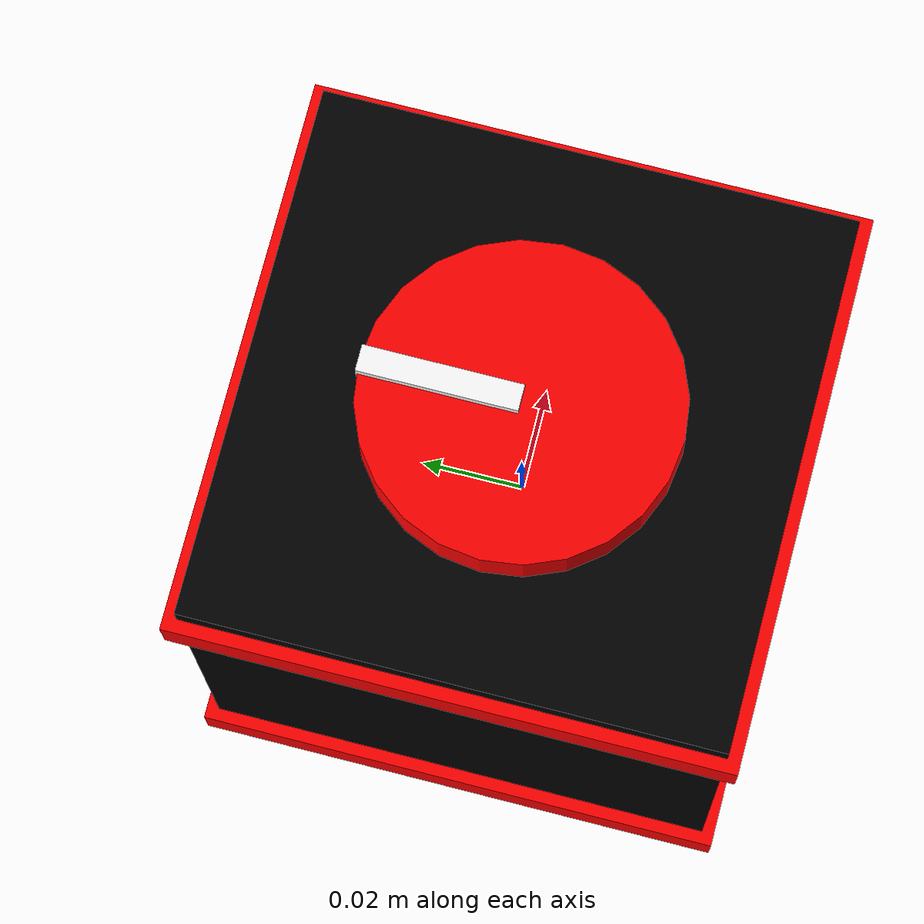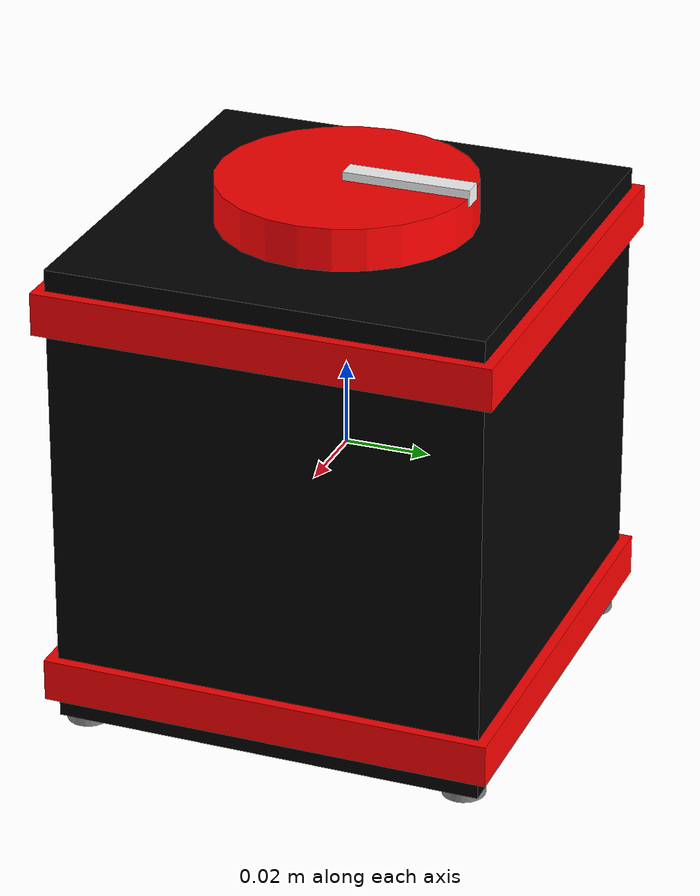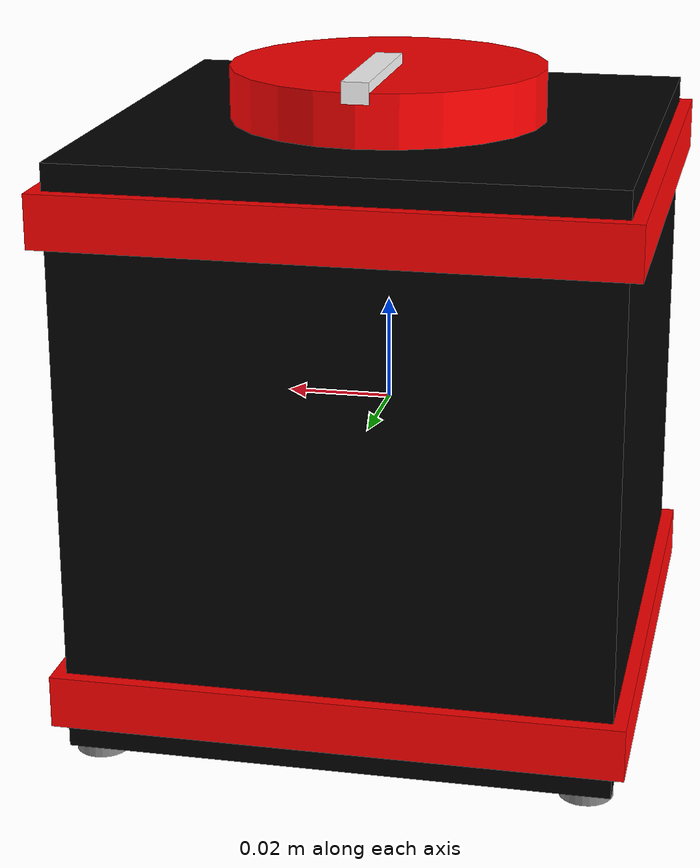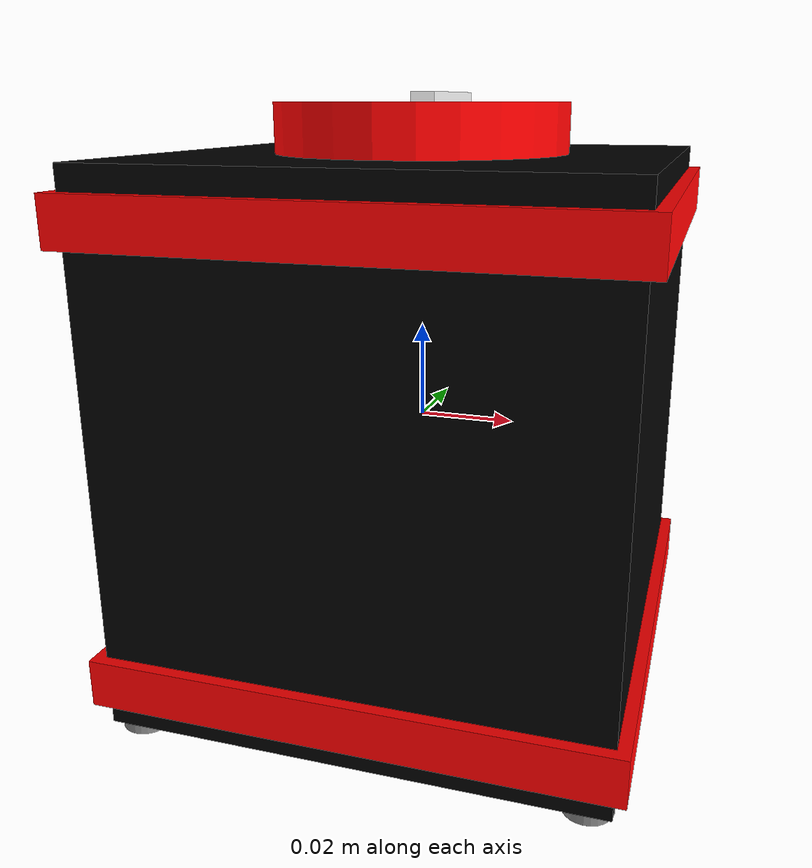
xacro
<?xml version="1.0"?>
<robot xmlns:xacro="http://www.ros.org/wiki/xacro" name="controlled_qube">
  <!-- Hent inn qube modellen -->
  <xacro:include filename="$(find qube_description)/urdf/qube.macro.xacro" />
  <xacro:qube/>

  <!-- Link Qube til scene -->
  <link name="world"/>
  <joint name="world_to_base" type="fixed">
    <parent link="world"/>
    <child link="base"/>
  </joint>

  <!-- driver argumenter -->
  <xacro:arg name="baud_rate" default="115200"/>
  <xacro:arg name="device"    default="/dev/ttyACM0"/>
  <xacro:arg name="simulation" default="false"/>

  <!-- Hent inn qube_driver_ros2_control -->
  <xacro:include filename="$(find qube_driver)/ros2_control/qube_driver.ros2_control.xacro"/>
  <xacro:qube_driver_ros2_control
    name="qube_driver"
    prefix=""
    baud_rate="$(arg baud_rate)"
    device="$(arg device)"
    simulation="$(arg simulation)"/>
</robot>

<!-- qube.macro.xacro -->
<robot xmlns:xacro="http://ros.org/wiki/xacro">

  <xacro:macro name="qube" params="">

    <!-- Farger -->

    <material name="base_black">

      <color rgba="0 0 0 1"/>

    </material>

    <material name="top_stripe_red">

      <color rgba="1 0 0 1"/>

    </material>

    <material name="bottom_stripe_red">

      <color rgba="1 0 0 1"/>

    </material>

    <material name="foot1_gray">

      <color rgba="0.5 0.5 0.5 1"/>

    </material>

    <material name="foot2_gray">

      <color rgba="0.5 0.5 0.5 1"/>

    </material>

    <material name="foot3_gray">

      <color rgba="0.5 0.5 0.5 1"/>

    </material>

    <material name="foot4_gray">

      <color rgba="0.5 0.5 0.5 1"/>

    </material>

    <material name="disk_red">

      <color rgba="1 0 0 1"/>

    </material>

    <material name="indicator_white">

      <color rgba="1 1 1 1"/>

    </material>

    <!-- Base parametre : Offisielle qube dimensjoner -->

    <xacro:property name="base_xy" value="0.102" />

    <xacro:property name="base_height" value="0.112" />

    <!-- Striper -->

    <xacro:property name="stripe_width" value="0.01" />

    <xacro:property name="stripe1_origo" value="0 0 ${base_height/2 - 0.01}" />

    <xacro:property name="stripe2_origo" value="0 0 ${-(base_height/2 - 0.01)}" />

    <!-- Føtter -->

    <xacro:property name="foot_radius" value="0.005" />

    <xacro:property name="foot_height" value="0.002" />

    <xacro:property name="foot1_origo" value="${base_xy/2 - foot_radius} ${base_xy/2 - foot_radius} ${-(base_height/2 + foot_height/2)}" />

    <xacro:property name="foot2_origo" value="${-(base_xy/2 - foot_radius)} ${base_xy/2 - foot_radius} ${-(base_height/2 + foot_height/2)}" />

    <xacro:property name="foot3_origo" value="${base_xy/2 - foot_radius} ${-(base_xy/2 - foot_radius)} ${-(base_height/2 + foot_height/2)}" />

    <xacro:property name="foot4_origo" value="${-(base_xy/2 - foot_radius)} ${-(base_xy/2 - foot_radius)} ${-(base_height/2 + foot_height/2)}" />

    <!-- Disk parametre -->

    <xacro:property name="disk_radius" value="0.03" />

    <xacro:property name="disk_thickness" value="0.01" />

    <!-- Indikator -->

    <xacro:property name="indicator_width" value="0.005" />

    <xacro:property name="indicator_thickness" value="0.004" />

    <xacro:property name="indicator_origo" value="0 ${disk_radius/2} ${disk_thickness/2}" />

    <!-- Base link -->

    <link name="base">

      <!-- Svart boks -->

      <visual>

        <origin xyz="0 0 0" rpy="0 0 0"/>

        <geometry>

          <box size="${base_xy} ${base_xy} ${base_height}"/>

        </geometry>

        <material name="base_black"/>

      </visual>

      <!-- Føtter -->

      <visual>

        <origin xyz="${foot1_origo}" rpy="0 0 0"/>

        <geometry>

          <cylinder radius="${foot_radius}" length="${foot_height}"/>

        </geometry>

        <material name="foot1_gray"/>

      </visual>

      <visual>

        <origin xyz="${foot2_origo}" rpy="0 0 0"/>

        <geometry>

          <cylinder radius="${foot_radius}" length="${foot_height}"/>

        </geometry>

        <material name="foot2_gray"/>

      </visual>

      <visual>

        <origin xyz="${foot3_origo}" rpy="0 0 0"/>

        <geometry>

          <cylinder radius="${foot_radius}" length="${foot_height}"/>

        </geometry>

        <material name="foot3_gray"/>

      </visual>

      <visual>

        <origin xyz="${foot4_origo}" rpy="0 0 0"/>

        <geometry>

          <cylinder radius="${foot_radius}" length="${foot_height}"/>

        </geometry>

        <material name="foot4_gray"/>

      </visual>

    </link>

    <!-- Top stripe link -->

    <link name="top_stripe_link">

      <!-- Rød stripe top -->

      <visual>

        <origin xyz="0 0 0" rpy="0 0 0"/>

        <geometry>

          <box size="${base_xy + 0.005} ${base_xy + 0.005} ${stripe_width}"/>

        </geometry>

        <material name="top_stripe_red"/>

      </visual>

    </link>

    <!-- Bottom stripe link -->

    <link name="bottom_stripe_link">

      <!-- Rød stripe bunn -->

      <visual>

        <origin xyz="0 0 0" rpy="0 0 0"/>

        <geometry>

          <box size="${base_xy + 0.005} ${base_xy + 0.005} ${stripe_width}"/>

        </geometry>

        <material name="bottom_stripe_red"/>

      </visual>

    </link>

    <!-- Disk link -->

    <link name="disk">

      <!-- Rød disk -->

      <visual>

        <origin xyz="0 0 0" rpy="0 0 0"/>

        <geometry>

          <cylinder radius="${disk_radius}" length="${disk_thickness}"/>

        </geometry>

        <material name="disk_red"/>

      </visual>

    </link>

    <!-- Indicator link -->

    <link name="indicator_link">

      <!-- Hvit indikator -->

      <visual>

        <origin xyz="0 0 0" rpy="0 0 0"/>

        <geometry>

          <box size="${indicator_width} ${disk_radius} ${indicator_thickness}"/>

        </geometry>

        <material name="indicator_white"/>

      </visual>

    </link>

    <!-- Fixed joint for top stripe -->

    <joint name="top_stripe_joint" type="fixed">

      <origin xyz="${stripe1_origo}" rpy="0 0 0"/>

      <parent link="base"/>

      <child link="top_stripe_link"/>

    </joint>

    <!-- Fixed joint for bottom stripe -->

    <joint name="bottom_stripe_joint" type="fixed">

      <origin xyz="${stripe2_origo}" rpy="0 0 0"/>

      <parent link="base"/>

      <child link="bottom_stripe_link"/>

    </joint>

    <!-- Base to disk joint -->

    <joint name="motor_joint" type="continuous">

      <origin xyz="0 0 ${base_height/2 + disk_thickness/2}" rpy="0 0 0"/>

      <axis xyz="0 0 1"/>

      <parent link="base"/>

      <child link="disk"/>

    </joint>

    <!-- Disk to indicator joint -->

    <joint name="indicator_joint" type="fixed">

      <origin xyz="${indicator_origo}" rpy="0 0 0"/>

      <parent link="disk"/>

      <child link="indicator_link"/>

    </joint>

  </xacro:macro>

</robot>
